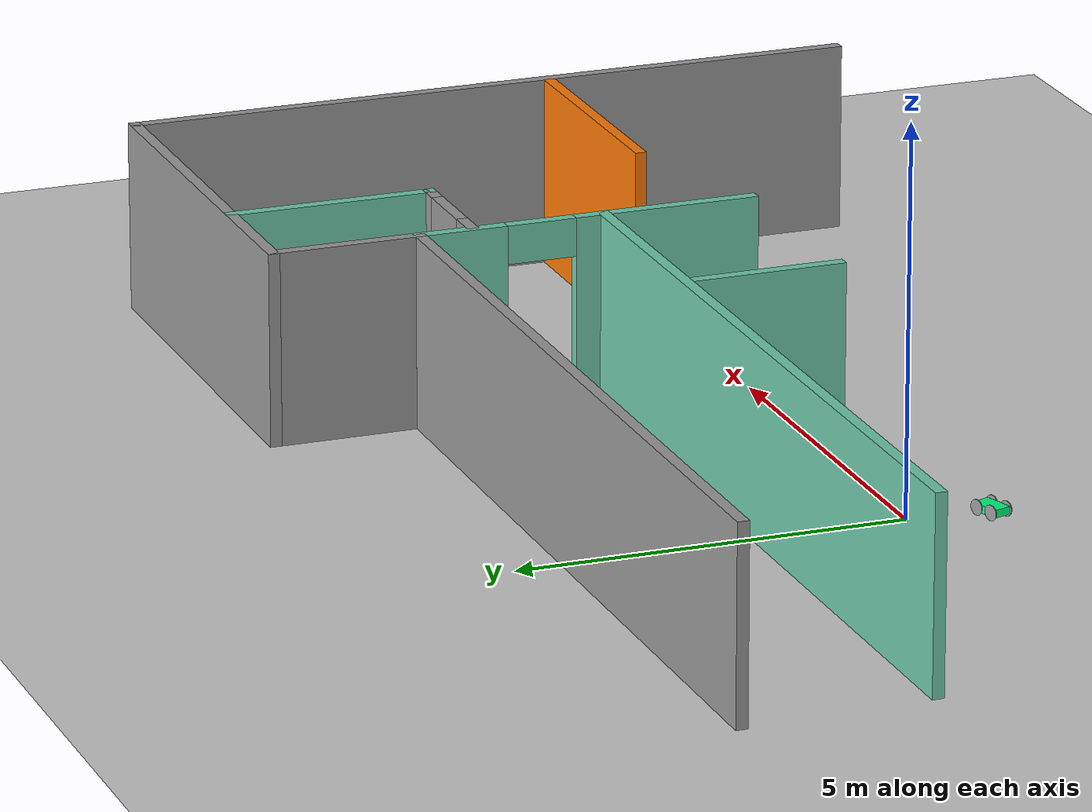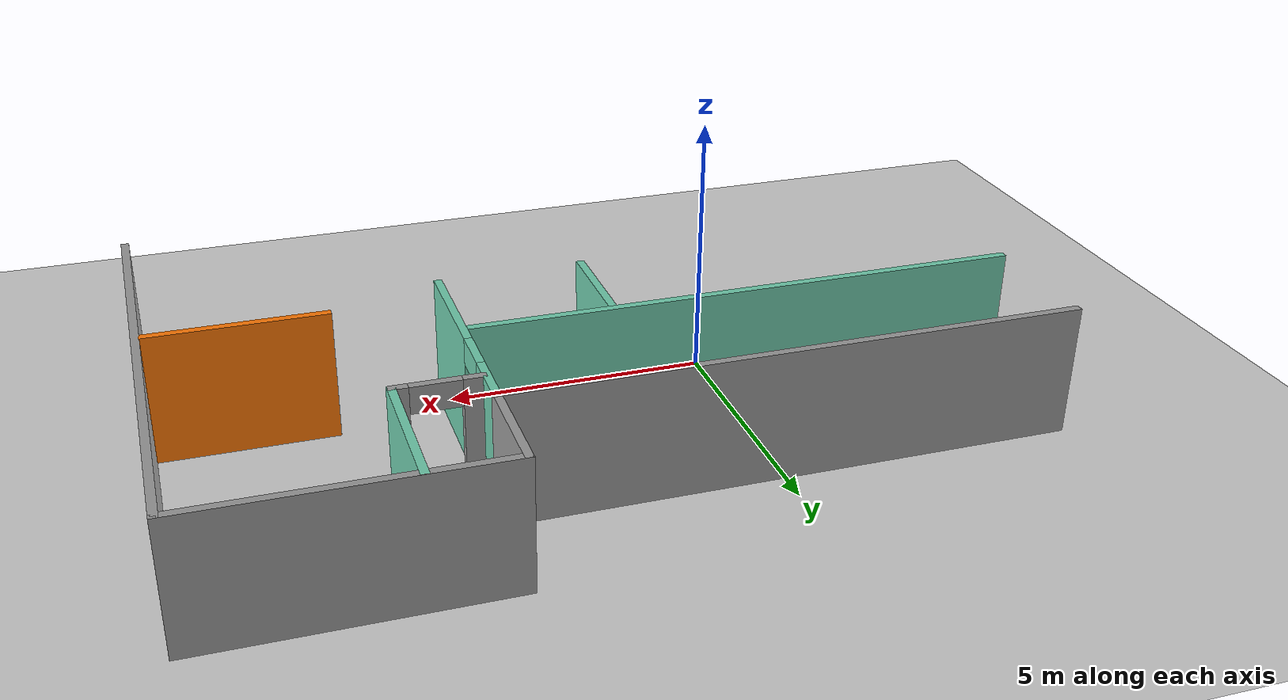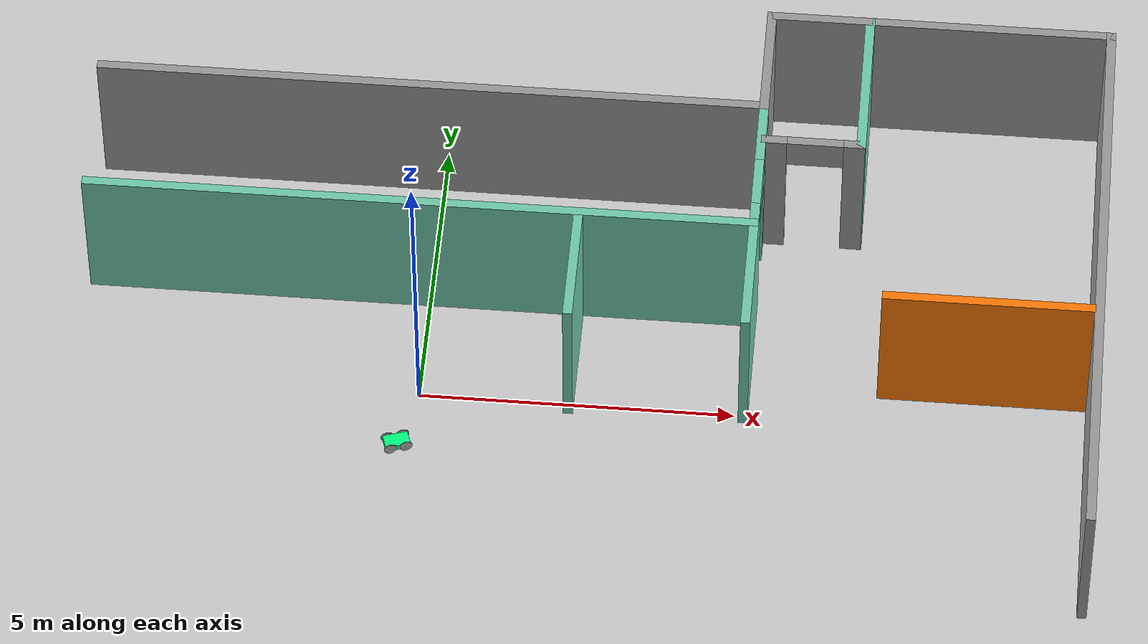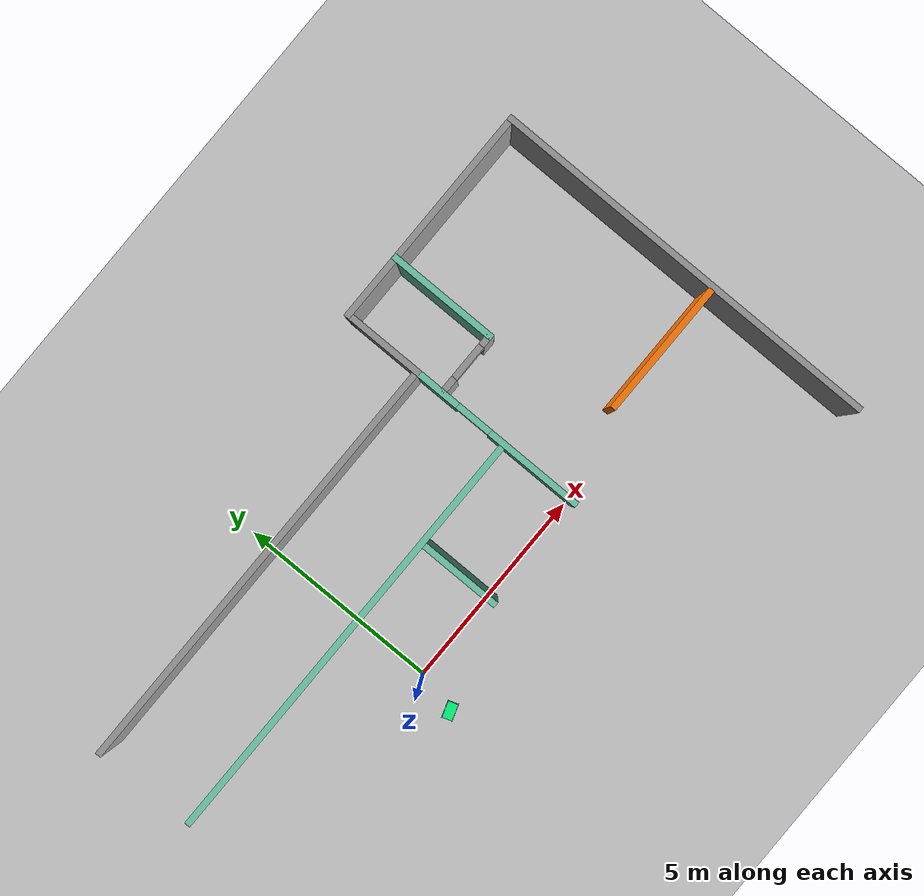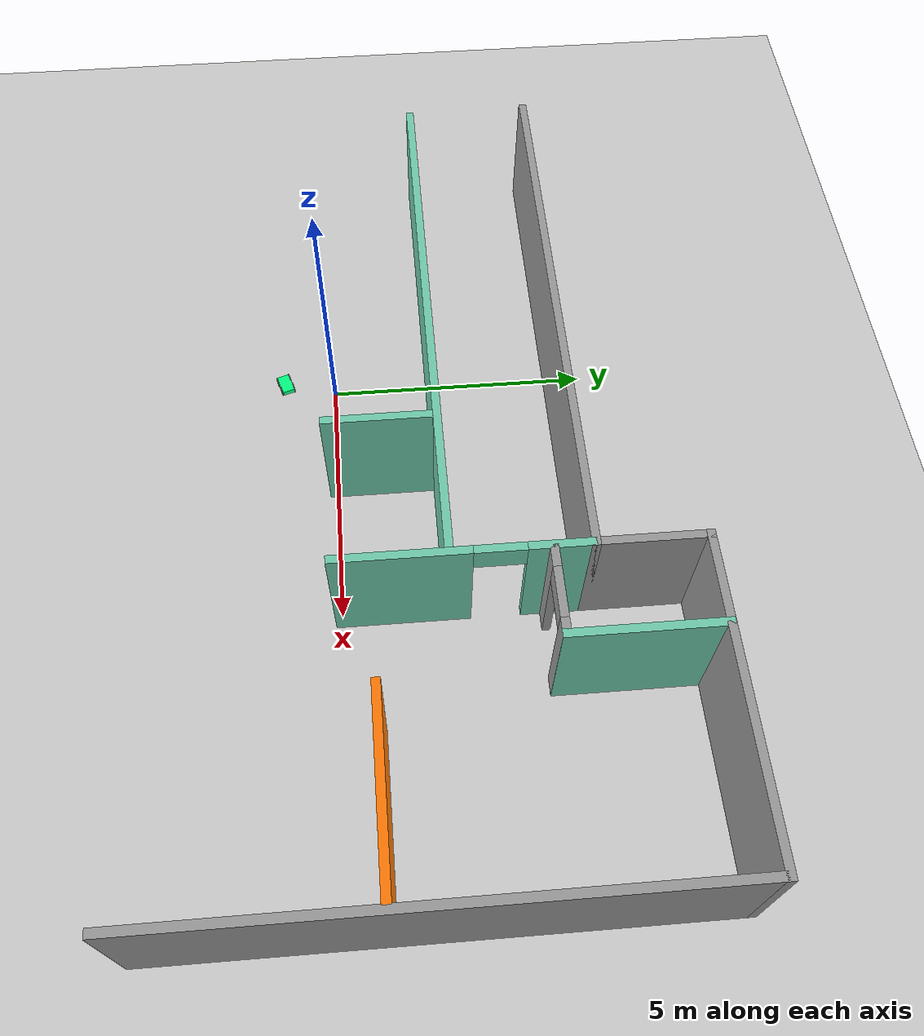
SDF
<sdf version="1.6">
 <world name="default">
  <model name="ground_plane">
   <static>1</static>
   <link name="link">
    <collision name="collision">
     <geometry><plane><normal>0 0 1</normal><size>100 100</size></plane></geometry>
     <surface><friction><ode><mu>100</mu><mu2>50</mu2></ode></friction></surface>
    </collision>
    <visual name="visual">
     <cast_shadows>0</cast_shadows>
     <geometry><plane><normal>0 0 1</normal><size>100 100</size></plane></geometry>
     <material>
      <script><uri>file://media/materials/scripts/gazebo.material</uri><name>Gazebo/Grey</name></script>
     </material>
    </visual>
   </link>
  </model>
  <model name="Building">
   <link name="Wall_114">
    <pose>5.74685 3.602 0 0 -0 0</pose>
    <visual name="Wall_114_Visual_0">
     <pose>-0.620125 0 1.25 0 -0 0</pose>
     <geometry><box><size>0.409749 0.15 2.5</size></box></geometry>
     <material>
      <script><uri>file://media/materials/scripts/gazebo.material</uri><name>Gazebo/Grey</name></script>
      <ambient>1 1 1 1</ambient>
      <shader type="pixel"/>
      <diffuse>0.7 0.7 0.7 1</diffuse>
      <specular>0.01 0.01 0.01 1</specular>
      <emissive>0 0 0 1</emissive>
     </material>
     <meta><layer>0</layer></meta>
    </visual>
    <visual name="Wall_114_Visual_1">
     <pose>0.654875 0 1.25 0 -0 0</pose>
     <geometry><box><size>0.340251 0.15 2.5</size></box></geometry>
     <material>
      <script><uri>file://media/materials/scripts/gazebo.material</uri><name>Gazebo/Grey</name></script>
      <ambient>1 1 1 1</ambient>
      <shader type="pixel"/>
      <diffuse>0.7 0.7 0.7 1</diffuse>
      <specular>0.01 0.01 0.01 1</specular>
      <emissive>0 0 0 1</emissive>
     </material>
     <meta><layer>0</layer></meta>
    </visual>
    <visual name="Wall_114_Visual_2">
     <pose>0.034749 0 2.25 0 -0 0</pose>
     <geometry><box><size>0.9 0.15 0.5</size></box></geometry>
     <material>
      <script><uri>file://media/materials/scripts/gazebo.material</uri><name>Gazebo/Grey</name></script>
      <ambient>1 1 1 1</ambient>
      <shader type="pixel"/>
      <diffuse>0.7 0.7 0.7 1</diffuse>
      <specular>0.01 0.01 0.01 1</specular>
      <emissive>0 0 0 1</emissive>
     </material>
     <meta><layer>0</layer></meta>
    </visual>
    <collision name="Wall_114_Collision_0">
     <pose>-0.620125 0 1.25 0 -0 0</pose>
     <geometry><box><size>0.409749 0.15 2.5</size></box></geometry>
     <surface>
      <friction>
       <ode><mu>1</mu><mu2>1</mu2><fdir1>0 0 0</fdir1><slip1>0</slip1><slip2>0</slip2></ode>
       <torsional>
        <coefficient>1</coefficient>
        <patch_radius>0</patch_radius>
        <surface_radius>0</surface_radius>
        <use_patch_radius>1</use_patch_radius>
        <ode><slip>0</slip></ode>
       </torsional>
      </friction>
      <bounce><restitution_coefficient>0</restitution_coefficient><threshold>1e+06</threshold></bounce>
      <contact>
       <collide_without_contact>0</collide_without_contact>
       <collide_without_contact_bitmask>1</collide_without_contact_bitmask>
       <collide_bitmask>1</collide_bitmask>
       <ode>
        <soft_cfm>0</soft_cfm>
        <soft_erp>0.2</soft_erp>
        <kp>1e+13</kp>
        <kd>1</kd>
        <max_vel>0.01</max_vel>
        <min_depth>0</min_depth>
       </ode>
       <bullet>
        <split_impulse>1</split_impulse>
        <split_impulse_penetration_threshold>-0.01</split_impulse_penetration_threshold>
        <soft_cfm>0</soft_cfm>
        <soft_erp>0.2</soft_erp>
        <kp>1e+13</kp>
        <kd>1</kd>
       </bullet>
      </contact>
     </surface>
    </collision>
    <collision name="Wall_114_Collision_1">
     <pose>0.654875 0 1.25 0 -0 0</pose>
     <geometry><box><size>0.340251 0.15 2.5</size></box></geometry>
     <surface>
      <friction>
       <ode><mu>1</mu><mu2>1</mu2><fdir1>0 0 0</fdir1><slip1>0</slip1><slip2>0</slip2></ode>
       <torsional>
        <coefficient>1</coefficient>
        <patch_radius>0</patch_radius>
        <surface_radius>0</surface_radius>
        <use_patch_radius>1</use_patch_radius>
        <ode><slip>0</slip></ode>
       </torsional>
      </friction>
      <bounce><restitution_coefficient>0</restitution_coefficient><threshold>1e+06</threshold></bounce>
      <contact>
       <collide_without_contact>0</collide_without_contact>
       <collide_without_contact_bitmask>1</collide_without_contact_bitmask>
       <collide_bitmask>1</collide_bitmask>
       <ode>
        <soft_cfm>0</soft_cfm>
        <soft_erp>0.2</soft_erp>
        <kp>1e+13</kp>
        <kd>1</kd>
        <max_vel>0.01</max_vel>
        <min_depth>0</min_depth>
       </ode>
       <bullet>
        <split_impulse>1</split_impulse>
        <split_impulse_penetration_threshold>-0.01</split_impulse_penetration_threshold>
        <soft_cfm>0</soft_cfm>
        <soft_erp>0.2</soft_erp>
        <kp>1e+13</kp>
        <kd>1</kd>
       </bullet>
      </contact>
     </surface>
    </collision>
    <collision name="Wall_114_Collision_2">
     <pose>0.034749 0 2.25 0 -0 0</pose>
     <geometry><box><size>0.9 0.15 0.5</size></box></geometry>
     <surface>
      <friction>
       <ode><mu>1</mu><mu2>1</mu2><fdir1>0 0 0</fdir1><slip1>0</slip1><slip2>0</slip2></ode>
       <torsional>
        <coefficient>1</coefficient>
        <patch_radius>0</patch_radius>
        <surface_radius>0</surface_radius>
        <use_patch_radius>1</use_patch_radius>
        <ode><slip>0</slip></ode>
       </torsional>
      </friction>
      <bounce><restitution_coefficient>0</restitution_coefficient><threshold>1e+06</threshold></bounce>
      <contact>
       <collide_without_contact>0</collide_without_contact>
       <collide_without_contact_bitmask>1</collide_without_contact_bitmask>
       <collide_bitmask>1</collide_bitmask>
       <ode>
        <soft_cfm>0</soft_cfm>
        <soft_erp>0.2</soft_erp>
        <kp>1e+13</kp>
        <kd>1</kd>
        <max_vel>0.01</max_vel>
        <min_depth>0</min_depth>
       </ode>
       <bullet>
        <split_impulse>1</split_impulse>
        <split_impulse_penetration_threshold>-0.01</split_impulse_penetration_threshold>
        <soft_cfm>0</soft_cfm>
        <soft_erp>0.2</soft_erp>
        <kp>1e+13</kp>
        <kd>1</kd>
       </bullet>
      </contact>
     </surface>
    </collision>
   </link>
   <link name="Wall_116">
    <pose>6.50779 4.9025 0 0 -0 1.5708</pose>
    <visual name="Wall_116_Visual">
     <pose>0 0 1.25 0 -0 0</pose>
     <geometry><box><size>2.75 0.15 2.5</size></box></geometry>
     <material>
      <script><uri>file://media/materials/scripts/gazebo.material</uri><name>Gazebo/Grey</name></script>
      <ambient>0.435294 0.796078 0.67451 1</ambient>
      <shader type="pixel"/>
      <diffuse>0.7 0.7 0.7 1</diffuse>
      <specular>0.01 0.01 0.01 1</specular>
      <emissive>0 0 0 1</emissive>
     </material>
     <meta><layer>0</layer></meta>
    </visual>
    <collision name="Wall_116_Collision">
     <pose>0 0 1.25 0 -0 0</pose>
     <geometry><box><size>2.75 0.15 2.5</size></box></geometry>
     <surface>
      <friction>
       <ode><mu>1</mu><mu2>1</mu2><fdir1>0 0 0</fdir1><slip1>0</slip1><slip2>0</slip2></ode>
       <torsional>
        <coefficient>1</coefficient>
        <patch_radius>0</patch_radius>
        <surface_radius>0</surface_radius>
        <use_patch_radius>1</use_patch_radius>
        <ode><slip>0</slip></ode>
       </torsional>
      </friction>
      <bounce><restitution_coefficient>0</restitution_coefficient><threshold>1e+06</threshold></bounce>
      <contact>
       <collide_without_contact>0</collide_without_contact>
       <collide_without_contact_bitmask>1</collide_without_contact_bitmask>
       <collide_bitmask>1</collide_bitmask>
       <ode>
        <soft_cfm>0</soft_cfm>
        <soft_erp>0.2</soft_erp>
        <kp>1e+13</kp>
        <kd>1</kd>
        <max_vel>0.01</max_vel>
        <min_depth>0</min_depth>
       </ode>
       <bullet>
        <split_impulse>1</split_impulse>
        <split_impulse_penetration_threshold>-0.01</split_impulse_penetration_threshold>
        <soft_cfm>0</soft_cfm>
        <soft_erp>0.2</soft_erp>
        <kp>1e+13</kp>
        <kd>1</kd>
       </bullet>
      </contact>
     </surface>
    </collision>
   </link>
   <link name="Wall_123">
    <pose>8.65985 0.580004 0 0 -0 0</pose>
    <visual name="Wall_123_Visual">
     <pose>0 0 1.25 0 -0 0</pose>
     <geometry><box><size>3.314 0.15 2.5</size></box></geometry>
     <material>
      <script><uri>file://media/materials/scripts/gazebo.material</uri><name>Gazebo/Grey</name></script>
      <ambient>0.996078 0.47451 0.0196078 1</ambient>
      <shader type="pixel"/>
      <diffuse>0.7 0.7 0.7 1</diffuse>
      <specular>0.01 0.01 0.01 1</specular>
      <emissive>0 0 0 1</emissive>
     </material>
     <meta><layer>0</layer></meta>
    </visual>
    <collision name="Wall_123_Collision">
     <pose>0 0 1.25 0 -0 0</pose>
     <geometry><box><size>3.314 0.15 2.5</size></box></geometry>
     <surface>
      <friction>
       <ode><mu>1</mu><mu2>1</mu2><fdir1>0 0 0</fdir1><slip1>0</slip1><slip2>0</slip2></ode>
       <torsional>
        <coefficient>1</coefficient>
        <patch_radius>0</patch_radius>
        <surface_radius>0</surface_radius>
        <use_patch_radius>1</use_patch_radius>
        <ode><slip>0</slip></ode>
       </torsional>
      </friction>
      <bounce><restitution_coefficient>0</restitution_coefficient><threshold>1e+06</threshold></bounce>
      <contact>
       <collide_without_contact>0</collide_without_contact>
       <collide_without_contact_bitmask>1</collide_without_contact_bitmask>
       <collide_bitmask>1</collide_bitmask>
       <ode>
        <soft_cfm>0</soft_cfm>
        <soft_erp>0.2</soft_erp>
        <kp>1e+13</kp>
        <kd>1</kd>
        <max_vel>0.01</max_vel>
        <min_depth>0</min_depth>
       </ode>
       <bullet>
        <split_impulse>1</split_impulse>
        <split_impulse_penetration_threshold>-0.01</split_impulse_penetration_threshold>
        <soft_cfm>0</soft_cfm>
        <soft_erp>0.2</soft_erp>
        <kp>1e+13</kp>
        <kd>1</kd>
       </bullet>
      </contact>
     </surface>
    </collision>
   </link>
   <link name="Wall_14">
    <pose>10.375 1.37771 0 0 -0 1.57083</pose>
    <visual name="Wall_14_Visual">
     <pose>0 0 1.25 0 -0 0</pose>
     <geometry><box><size>9.81812 0.15 2.5</size></box></geometry>
     <material>
      <script><uri>file://media/materials/scripts/gazebo.material</uri><name>Gazebo/Grey</name></script>
      <ambient>1 1 1 1</ambient>
      <shader type="pixel"/>
      <diffuse>0.7 0.7 0.7 1</diffuse>
      <specular>0.01 0.01 0.01 1</specular>
      <emissive>0 0 0 1</emissive>
     </material>
     <meta><layer>0</layer></meta>
    </visual>
    <collision name="Wall_14_Collision">
     <pose>0 0 1.25 0 -0 0</pose>
     <geometry><box><size>9.81812 0.15 2.5</size></box></geometry>
     <surface>
      <friction>
       <ode><mu>1</mu><mu2>1</mu2><fdir1>0 0 0</fdir1><slip1>0</slip1><slip2>0</slip2></ode>
       <torsional>
        <coefficient>1</coefficient>
        <patch_radius>0</patch_radius>
        <surface_radius>0</surface_radius>
        <use_patch_radius>1</use_patch_radius>
        <ode><slip>0</slip></ode>
       </torsional>
      </friction>
      <bounce><restitution_coefficient>0</restitution_coefficient><threshold>1e+06</threshold></bounce>
      <contact>
       <collide_without_contact>0</collide_without_contact>
       <collide_without_contact_bitmask>1</collide_without_contact_bitmask>
       <collide_bitmask>1</collide_bitmask>
       <ode>
        <soft_cfm>0</soft_cfm>
        <soft_erp>0.2</soft_erp>
        <kp>1e+13</kp>
        <kd>1</kd>
        <max_vel>0.01</max_vel>
        <min_depth>0</min_depth>
       </ode>
       <bullet>
        <split_impulse>1</split_impulse>
        <split_impulse_penetration_threshold>-0.01</split_impulse_penetration_threshold>
        <soft_cfm>0</soft_cfm>
        <soft_erp>0.2</soft_erp>
        <kp>1e+13</kp>
        <kd>1</kd>
       </bullet>
      </contact>
     </surface>
    </collision>
   </link>
   <link name="Wall_15">
    <pose>7.64985 6.212 0 0 -0 3.14159</pose>
    <visual name="Wall_15_Visual">
     <pose>0 0 1.25 0 -0 0</pose>
     <geometry><box><size>5.6005 0.15 2.5</size></box></geometry>
     <material>
      <script><uri>file://media/materials/scripts/gazebo.material</uri><name>Gazebo/Grey</name></script>
      <ambient>1 1 1 1</ambient>
      <shader type="pixel"/>
      <diffuse>0.7 0.7 0.7 1</diffuse>
      <specular>0.01 0.01 0.01 1</specular>
      <emissive>0 0 0 1</emissive>
     </material>
     <meta><layer>0</layer></meta>
    </visual>
    <collision name="Wall_15_Collision">
     <pose>0 0 1.25 0 -0 0</pose>
     <geometry><box><size>5.6005 0.15 2.5</size></box></geometry>
     <surface>
      <friction>
       <ode><mu>1</mu><mu2>1</mu2><fdir1>0 0 0</fdir1><slip1>0</slip1><slip2>0</slip2></ode>
       <torsional>
        <coefficient>1</coefficient>
        <patch_radius>0</patch_radius>
        <surface_radius>0</surface_radius>
        <use_patch_radius>1</use_patch_radius>
        <ode><slip>0</slip></ode>
       </torsional>
      </friction>
      <bounce><restitution_coefficient>0</restitution_coefficient><threshold>1e+06</threshold></bounce>
      <contact>
       <collide_without_contact>0</collide_without_contact>
       <collide_without_contact_bitmask>1</collide_without_contact_bitmask>
       <collide_bitmask>1</collide_bitmask>
       <ode>
        <soft_cfm>0</soft_cfm>
        <soft_erp>0.2</soft_erp>
        <kp>1e+13</kp>
        <kd>1</kd>
        <max_vel>0.01</max_vel>
        <min_depth>0</min_depth>
       </ode>
       <bullet>
        <split_impulse>1</split_impulse>
        <split_impulse_penetration_threshold>-0.01</split_impulse_penetration_threshold>
        <soft_cfm>0</soft_cfm>
        <soft_erp>0.2</soft_erp>
        <kp>1e+13</kp>
        <kd>1</kd>
       </bullet>
      </contact>
     </surface>
    </collision>
   </link>
   <link name="Wall_16">
    <pose>4.92485 5.2565 0 0 0 -1.5708</pose>
    <visual name="Wall_16_Visual">
     <pose>0 0 1.25 0 -0 0</pose>
     <geometry><box><size>2.06053 0.15 2.5</size></box></geometry>
     <material>
      <script><uri>file://media/materials/scripts/gazebo.material</uri><name>Gazebo/Grey</name></script>
      <ambient>1 1 1 1</ambient>
      <shader type="pixel"/>
      <diffuse>0.7 0.7 0.7 1</diffuse>
      <specular>0.01 0.01 0.01 1</specular>
      <emissive>0 0 0 1</emissive>
     </material>
     <meta><layer>0</layer></meta>
    </visual>
    <collision name="Wall_16_Collision">
     <pose>0 0 1.25 0 -0 0</pose>
     <geometry><box><size>2.06053 0.15 2.5</size></box></geometry>
     <surface>
      <friction>
       <ode><mu>1</mu><mu2>1</mu2><fdir1>0 0 0</fdir1><slip1>0</slip1><slip2>0</slip2></ode>
       <torsional>
        <coefficient>1</coefficient>
        <patch_radius>0</patch_radius>
        <surface_radius>0</surface_radius>
        <use_patch_radius>1</use_patch_radius>
        <ode><slip>0</slip></ode>
       </torsional>
      </friction>
      <bounce><restitution_coefficient>0</restitution_coefficient><threshold>1e+06</threshold></bounce>
      <contact>
       <collide_without_contact>0</collide_without_contact>
       <collide_without_contact_bitmask>1</collide_without_contact_bitmask>
       <collide_bitmask>1</collide_bitmask>
       <ode>
        <soft_cfm>0</soft_cfm>
        <soft_erp>0.2</soft_erp>
        <kp>1e+13</kp>
        <kd>1</kd>
        <max_vel>0.01</max_vel>
        <min_depth>0</min_depth>
       </ode>
       <bullet>
        <split_impulse>1</split_impulse>
        <split_impulse_penetration_threshold>-0.01</split_impulse_penetration_threshold>
        <soft_cfm>0</soft_cfm>
        <soft_erp>0.2</soft_erp>
        <kp>1e+13</kp>
        <kd>1</kd>
       </bullet>
      </contact>
     </surface>
    </collision>
   </link>
   <link name="Wall_17">
    <pose>-0.375154 4.301 0 0 -0 3.14159</pose>
    <visual name="Wall_17_Visual">
     <pose>0 0 1.25 0 -0 0</pose>
     <geometry><box><size>10.75 0.15 2.5</size></box></geometry>
     <material>
      <script><uri>file://media/materials/scripts/gazebo.material</uri><name>Gazebo/Grey</name></script>
      <ambient>1 1 1 1</ambient>
      <shader type="pixel"/>
      <diffuse>0.7 0.7 0.7 1</diffuse>
      <specular>0.01 0.01 0.01 1</specular>
      <emissive>0 0 0 1</emissive>
     </material>
     <meta><layer>0</layer></meta>
    </visual>
    <collision name="Wall_17_Collision">
     <pose>0 0 1.25 0 -0 0</pose>
     <geometry><box><size>10.75 0.15 2.5</size></box></geometry>
     <surface>
      <friction>
       <ode><mu>1</mu><mu2>1</mu2><fdir1>0 0 0</fdir1><slip1>0</slip1><slip2>0</slip2></ode>
       <torsional>
        <coefficient>1</coefficient>
        <patch_radius>0</patch_radius>
        <surface_radius>0</surface_radius>
        <use_patch_radius>1</use_patch_radius>
        <ode><slip>0</slip></ode>
       </torsional>
      </friction>
      <bounce><restitution_coefficient>0</restitution_coefficient><threshold>1e+06</threshold></bounce>
      <contact>
       <collide_without_contact>0</collide_without_contact>
       <collide_without_contact_bitmask>1</collide_without_contact_bitmask>
       <collide_bitmask>1</collide_bitmask>
       <ode>
        <soft_cfm>0</soft_cfm>
        <soft_erp>0.2</soft_erp>
        <kp>1e+13</kp>
        <kd>1</kd>
        <max_vel>0.01</max_vel>
        <min_depth>0</min_depth>
       </ode>
       <bullet>
        <split_impulse>1</split_impulse>
        <split_impulse_penetration_threshold>-0.01</split_impulse_penetration_threshold>
        <soft_cfm>0</soft_cfm>
        <soft_erp>0.2</soft_erp>
        <kp>1e+13</kp>
        <kd>1</kd>
       </bullet>
      </contact>
     </surface>
    </collision>
   </link>
   <link name="Wall_42">
    <pose>4.92481 2.11064 0 0 0 -1.57081</pose>
    <visual name="Wall_42_Visual_0">
     <pose>-1.66328 0 1.25 0 -0 0</pose>
     <geometry><box><size>1.20417 0.15 2.5</size></box></geometry>
     <material>
      <script><uri>file://media/materials/scripts/gazebo.material</uri><name>Gazebo/Grey</name></script>
      <ambient>0.435294 0.796078 0.67451 1</ambient>
      <shader type="pixel"/>
      <diffuse>0.7 0.7 0.7 1</diffuse>
      <specular>0.01 0.01 0.01 1</specular>
      <emissive>0 0 0 1</emissive>
     </material>
     <meta><layer>0</layer></meta>
    </visual>
    <visual name="Wall_42_Visual_1">
     <pose>1.05208 0 1.25 0 -0 0</pose>
     <geometry><box><size>2.42655 0.15 2.5</size></box></geometry>
     <material>
      <script><uri>file://media/materials/scripts/gazebo.material</uri><name>Gazebo/Grey</name></script>
      <ambient>0.435294 0.796078 0.67451 1</ambient>
      <shader type="pixel"/>
      <diffuse>0.7 0.7 0.7 1</diffuse>
      <specular>0.01 0.01 0.01 1</specular>
      <emissive>0 0 0 1</emissive>
     </material>
     <meta><layer>0</layer></meta>
    </visual>
    <visual name="Wall_42_Visual_2">
     <pose>-0.611192 0 2.25 0 -0 0</pose>
     <geometry><box><size>0.9 0.15 0.5</size></box></geometry>
     <material>
      <script><uri>file://media/materials/scripts/gazebo.material</uri><name>Gazebo/Grey</name></script>
      <ambient>0.435294 0.796078 0.67451 1</ambient>
      <shader type="pixel"/>
      <diffuse>0.7 0.7 0.7 1</diffuse>
      <specular>0.01 0.01 0.01 1</specular>
      <emissive>0 0 0 1</emissive>
     </material>
     <meta><layer>0</layer></meta>
    </visual>
    <collision name="Wall_42_Collision_0">
     <pose>-1.66328 0 1.25 0 -0 0</pose>
     <geometry><box><size>1.20417 0.15 2.5</size></box></geometry>
     <surface>
      <friction>
       <ode><mu>1</mu><mu2>1</mu2><fdir1>0 0 0</fdir1><slip1>0</slip1><slip2>0</slip2></ode>
       <torsional>
        <coefficient>1</coefficient>
        <patch_radius>0</patch_radius>
        <surface_radius>0</surface_radius>
        <use_patch_radius>1</use_patch_radius>
        <ode><slip>0</slip></ode>
       </torsional>
      </friction>
      <bounce><restitution_coefficient>0</restitution_coefficient><threshold>1e+06</threshold></bounce>
      <contact>
       <collide_without_contact>0</collide_without_contact>
       <collide_without_contact_bitmask>1</collide_without_contact_bitmask>
       <collide_bitmask>1</collide_bitmask>
       <ode>
        <soft_cfm>0</soft_cfm>
        <soft_erp>0.2</soft_erp>
        <kp>1e+13</kp>
        <kd>1</kd>
        <max_vel>0.01</max_vel>
        <min_depth>0</min_depth>
       </ode>
       <bullet>
        <split_impulse>1</split_impulse>
        <split_impulse_penetration_threshold>-0.01</split_impulse_penetration_threshold>
        <soft_cfm>0</soft_cfm>
        <soft_erp>0.2</soft_erp>
        <kp>1e+13</kp>
        <kd>1</kd>
       </bullet>
      </contact>
     </surface>
    </collision>
    <collision name="Wall_42_Collision_1">
     <pose>1.05208 0 1.25 0 -0 0</pose>
     <geometry><box><size>2.42655 0.15 2.5</size></box></geometry>
     <surface>
      <friction>
       <ode><mu>1</mu><mu2>1</mu2><fdir1>0 0 0</fdir1><slip1>0</slip1><slip2>0</slip2></ode>
       <torsional>
        <coefficient>1</coefficient>
        <patch_radius>0</patch_radius>
        <surface_radius>0</surface_radius>
        <use_patch_radius>1</use_patch_radius>
        <ode><slip>0</slip></ode>
       </torsional>
      </friction>
      <bounce><restitution_coefficient>0</restitution_coefficient><threshold>1e+06</threshold></bounce>
      <contact>
       <collide_without_contact>0</collide_without_contact>
       <collide_without_contact_bitmask>1</collide_without_contact_bitmask>
       <collide_bitmask>1</collide_bitmask>
       <ode>
        <soft_cfm>0</soft_cfm>
        <soft_erp>0.2</soft_erp>
        <kp>1e+13</kp>
        <kd>1</kd>
        <max_vel>0.01</max_vel>
        <min_depth>0</min_depth>
       </ode>
       <bullet>
        <split_impulse>1</split_impulse>
        <split_impulse_penetration_threshold>-0.01</split_impulse_penetration_threshold>
        <soft_cfm>0</soft_cfm>
        <soft_erp>0.2</soft_erp>
        <kp>1e+13</kp>
        <kd>1</kd>
       </bullet>
      </contact>
     </surface>
    </collision>
    <collision name="Wall_42_Collision_2">
     <pose>-0.611192 0 2.25 0 -0 0</pose>
     <geometry><box><size>0.9 0.15 0.5</size></box></geometry>
     <surface>
      <friction>
       <ode><mu>1</mu><mu2>1</mu2><fdir1>0 0 0</fdir1><slip1>0</slip1><slip2>0</slip2></ode>
       <torsional>
        <coefficient>1</coefficient>
        <patch_radius>0</patch_radius>
        <surface_radius>0</surface_radius>
        <use_patch_radius>1</use_patch_radius>
        <ode><slip>0</slip></ode>
       </torsional>
      </friction>
      <bounce><restitution_coefficient>0</restitution_coefficient><threshold>1e+06</threshold></bounce>
      <contact>
       <collide_without_contact>0</collide_without_contact>
       <collide_without_contact_bitmask>1</collide_without_contact_bitmask>
       <collide_bitmask>1</collide_bitmask>
       <ode>
        <soft_cfm>0</soft_cfm>
        <soft_erp>0.2</soft_erp>
        <kp>1e+13</kp>
        <kd>1</kd>
        <max_vel>0.01</max_vel>
        <min_depth>0</min_depth>
       </ode>
       <bullet>
        <split_impulse>1</split_impulse>
        <split_impulse_penetration_threshold>-0.01</split_impulse_penetration_threshold>
        <soft_cfm>0</soft_cfm>
        <soft_erp>0.2</soft_erp>
        <kp>1e+13</kp>
        <kd>1</kd>
       </bullet>
      </contact>
     </surface>
    </collision>
   </link>
   <link name="Wall_44">
    <pose>-0.339154 1.876 0 0 -0 0</pose>
    <visual name="Wall_44_Visual">
     <pose>0 0 1.25 0 -0 0</pose>
     <geometry><box><size>10.67 0.15 2.5</size></box></geometry>
     <material>
      <script><uri>file://media/materials/scripts/gazebo.material</uri><name>Gazebo/Grey</name></script>
      <ambient>0.435294 0.796078 0.67451 1</ambient>
      <shader type="pixel"/>
      <diffuse>0.7 0.7 0.7 1</diffuse>
      <specular>0.01 0.01 0.01 1</specular>
      <emissive>0 0 0 1</emissive>
     </material>
     <meta><layer>0</layer></meta>
    </visual>
    <collision name="Wall_44_Collision">
     <pose>0 0 1.25 0 -0 0</pose>
     <geometry><box><size>10.67 0.15 2.5</size></box></geometry>
     <surface>
      <friction>
       <ode><mu>1</mu><mu2>1</mu2><fdir1>0 0 0</fdir1><slip1>0</slip1><slip2>0</slip2></ode>
       <torsional>
        <coefficient>1</coefficient>
        <patch_radius>0</patch_radius>
        <surface_radius>0</surface_radius>
        <use_patch_radius>1</use_patch_radius>
        <ode><slip>0</slip></ode>
       </torsional>
      </friction>
      <bounce><restitution_coefficient>0</restitution_coefficient><threshold>1e+06</threshold></bounce>
      <contact>
       <collide_without_contact>0</collide_without_contact>
       <collide_without_contact_bitmask>1</collide_without_contact_bitmask>
       <collide_bitmask>1</collide_bitmask>
       <ode>
        <soft_cfm>0</soft_cfm>
        <soft_erp>0.2</soft_erp>
        <kp>1e+13</kp>
        <kd>1</kd>
        <max_vel>0.01</max_vel>
        <min_depth>0</min_depth>
       </ode>
       <bullet>
        <split_impulse>1</split_impulse>
        <split_impulse_penetration_threshold>-0.01</split_impulse_penetration_threshold>
        <soft_cfm>0</soft_cfm>
        <soft_erp>0.2</soft_erp>
        <kp>1e+13</kp>
        <kd>1</kd>
       </bullet>
      </contact>
     </surface>
    </collision>
   </link>
   <link name="Wall_50">
    <pose>2.16791 0.805908 0 0 -0 1.5708</pose>
    <visual name="Wall_50_Visual">
     <pose>0 0 1.25 0 -0 0</pose>
     <geometry><box><size>2 0.15 2.5</size></box></geometry>
     <material>
      <script><uri>file://media/materials/scripts/gazebo.material</uri><name>Gazebo/Grey</name></script>
      <ambient>0.435294 0.796078 0.67451 1</ambient>
      <shader type="pixel"/>
      <diffuse>0.7 0.7 0.7 1</diffuse>
      <specular>0.01 0.01 0.01 1</specular>
      <emissive>0 0 0 1</emissive>
     </material>
     <meta><layer>0</layer></meta>
    </visual>
    <collision name="Wall_50_Collision">
     <pose>0 0 1.25 0 -0 0</pose>
     <geometry><box><size>2 0.15 2.5</size></box></geometry>
     <surface>
      <friction>
       <ode><mu>1</mu><mu2>1</mu2><fdir1>0 0 0</fdir1><slip1>0</slip1><slip2>0</slip2></ode>
       <torsional>
        <coefficient>1</coefficient>
        <patch_radius>0</patch_radius>
        <surface_radius>0</surface_radius>
        <use_patch_radius>1</use_patch_radius>
        <ode><slip>0</slip></ode>
       </torsional>
      </friction>
      <bounce><restitution_coefficient>0</restitution_coefficient><threshold>1e+06</threshold></bounce>
      <contact>
       <collide_without_contact>0</collide_without_contact>
       <collide_without_contact_bitmask>1</collide_without_contact_bitmask>
       <collide_bitmask>1</collide_bitmask>
       <ode>
        <soft_cfm>0</soft_cfm>
        <soft_erp>0.2</soft_erp>
        <kp>1e+13</kp>
        <kd>1</kd>
        <max_vel>0.01</max_vel>
        <min_depth>0</min_depth>
       </ode>
       <bullet>
        <split_impulse>1</split_impulse>
        <split_impulse_penetration_threshold>-0.01</split_impulse_penetration_threshold>
        <soft_cfm>0</soft_cfm>
        <soft_erp>0.2</soft_erp>
        <kp>1e+13</kp>
        <kd>1</kd>
       </bullet>
      </contact>
     </surface>
    </collision>
   </link>
   <static>1</static>
   <pose>0.2098 0.03522 0 0 -0 0</pose>
  </model>
  <model name="Diff_Drive_Robot_clone">
   <link name="link_1">
    <pose>0 0 0.025 0 -0 0</pose>
    <inertial>
     <mass>1</mass>
     <inertia>
      <ixx>0.166667</ixx>
      <ixy>0</ixy>
      <ixz>0</ixz>
      <iyy>0.166667</iyy>
      <iyz>0</iyz>
      <izz>0.166667</izz>
     </inertia>
    </inertial>
    <visual name="visual">
     <geometry><box><size>0.4 0.25 0.1</size></box></geometry>
     <material>
      <lighting>1</lighting>
      <script><uri>file://media/materials/scripts/gazebo.material</uri><name>Gazebo/Grey</name></script>
      <shader type="pixel"><normal_map>__default__</normal_map></shader>
      <ambient>0 1 0.5 1</ambient>
      <diffuse>0.7 0.7 0.7 1</diffuse>
      <specular>0.01 0.01 0.01 1</specular>
      <emissive>0 0 0 1</emissive>
     </material>
    </visual>
    <collision name="collision">
     <geometry><box><size>0.4 0.25 0.1</size></box></geometry>
     <surface>
      <friction>
       <ode><mu>1</mu><mu2>1</mu2><fdir1>0 0 0</fdir1><slip1>0</slip1><slip2>0</slip2></ode>
       <torsional>
        <coefficient>1</coefficient>
        <patch_radius>0</patch_radius>
        <surface_radius>0</surface_radius>
        <use_patch_radius>1</use_patch_radius>
        <ode><slip>0</slip></ode>
       </torsional>
      </friction>
      <bounce><restitution_coefficient>0</restitution_coefficient><threshold>1e+06</threshold></bounce>
      <contact>
       <collide_without_contact>0</collide_without_contact>
       <collide_without_contact_bitmask>1</collide_without_contact_bitmask>
       <collide_bitmask>1</collide_bitmask>
       <ode>
        <soft_cfm>0</soft_cfm>
        <soft_erp>0.2</soft_erp>
        <kp>1e+13</kp>
        <kd>1</kd>
        <max_vel>0.01</max_vel>
        <min_depth>0</min_depth>
       </ode>
       <bullet>
        <split_impulse>1</split_impulse>
        <split_impulse_penetration_threshold>-0.01</split_impulse_penetration_threshold>
        <soft_cfm>0</soft_cfm>
        <soft_erp>0.2</soft_erp>
        <kp>1e+13</kp>
        <kd>1</kd>
       </bullet>
      </contact>
     </surface>
    </collision>
   </link>
   <link name="link_2">
    <pose>0.125 0.125 0.025 1.5707 -0 0</pose>
    <inertial>
     <mass>1</mass>
     <inertia><ixx>0.145833</ixx><ixy>0</ixy><ixz>0</ixz><iyy>0.145833</iyy><iyz>0</iyz><izz>0.125</izz></inertia>
    </inertial>
    <visual name="visual">
     <geometry><cylinder><radius>0.1</radius><length>0.01</length></cylinder></geometry>
     <material>
      <lighting>1</lighting>
      <script><uri>file://media/materials/scripts/gazebo.material</uri><name>Gazebo/Grey</name></script>
      <shader type="pixel"><normal_map>__default__</normal_map></shader>
      <ambient>0.3 0.3 0.3 1</ambient>
      <diffuse>0.7 0.7 0.7 1</diffuse>
      <specular>0.01 0.01 0.01 1</specular>
      <emissive>0 0 0 1</emissive>
     </material>
    </visual>
    <collision name="collision">
     <geometry><cylinder><radius>0.1</radius><length>0.01</length></cylinder></geometry>
     <surface>
      <friction>
       <ode><mu>1</mu><mu2>1</mu2><fdir1>0 0 0</fdir1><slip1>0</slip1><slip2>0</slip2></ode>
       <torsional>
        <coefficient>1</coefficient>
        <patch_radius>0</patch_radius>
        <surface_radius>0</surface_radius>
        <use_patch_radius>1</use_patch_radius>
        <ode><slip>0</slip></ode>
       </torsional>
      </friction>
      <bounce><restitution_coefficient>0</restitution_coefficient><threshold>1e+06</threshold></bounce>
      <contact>
       <collide_without_contact>0</collide_without_contact>
       <collide_without_contact_bitmask>1</collide_without_contact_bitmask>
       <collide_bitmask>1</collide_bitmask>
       <ode>
        <soft_cfm>0</soft_cfm>
        <soft_erp>0.2</soft_erp>
        <kp>1e+13</kp>
        <kd>1</kd>
        <max_vel>0.01</max_vel>
        <min_depth>0</min_depth>
       </ode>
       <bullet>
        <split_impulse>1</split_impulse>
        <split_impulse_penetration_threshold>-0.01</split_impulse_penetration_threshold>
        <soft_cfm>0</soft_cfm>
        <soft_erp>0.2</soft_erp>
        <kp>1e+13</kp>
        <kd>1</kd>
       </bullet>
      </contact>
     </surface>
    </collision>
   </link>
   <link name="link_2_clone">
    <pose>0.125 -0.125 0.025 1.5707 -0 0</pose>
    <inertial>
     <mass>1</mass>
     <inertia><ixx>0.145833</ixx><ixy>0</ixy><ixz>0</ixz><iyy>0.145833</iyy><iyz>0</iyz><izz>0.125</izz></inertia>
    </inertial>
    <visual name="visual">
     <geometry><cylinder><radius>0.1</radius><length>0.01</length></cylinder></geometry>
     <material>
      <lighting>1</lighting>
      <script><uri>file://media/materials/scripts/gazebo.material</uri><name>Gazebo/Grey</name></script>
      <shader type="pixel"><normal_map>__default__</normal_map></shader>
      <ambient>0.3 0.3 0.3 1</ambient>
      <diffuse>0.7 0.7 0.7 1</diffuse>
      <specular>0.01 0.01 0.01 1</specular>
      <emissive>0 0 0 1</emissive>
     </material>
    </visual>
    <collision name="collision">
     <geometry><cylinder><radius>0.1</radius><length>0.01</length></cylinder></geometry>
     <surface>
      <friction>
       <ode><mu>1</mu><mu2>1</mu2><fdir1>0 0 0</fdir1><slip1>0</slip1><slip2>0</slip2></ode>
       <torsional>
        <coefficient>1</coefficient>
        <patch_radius>0</patch_radius>
        <surface_radius>0</surface_radius>
        <use_patch_radius>1</use_patch_radius>
        <ode><slip>0</slip></ode>
       </torsional>
      </friction>
      <bounce><restitution_coefficient>0</restitution_coefficient><threshold>1e+06</threshold></bounce>
      <contact>
       <collide_without_contact>0</collide_without_contact>
       <collide_without_contact_bitmask>1</collide_without_contact_bitmask>
       <collide_bitmask>1</collide_bitmask>
       <ode>
        <soft_cfm>0</soft_cfm>
        <soft_erp>0.2</soft_erp>
        <kp>1e+13</kp>
        <kd>1</kd>
        <max_vel>0.01</max_vel>
        <min_depth>0</min_depth>
       </ode>
       <bullet>
        <split_impulse>1</split_impulse>
        <split_impulse_penetration_threshold>-0.01</split_impulse_penetration_threshold>
        <soft_cfm>0</soft_cfm>
        <soft_erp>0.2</soft_erp>
        <kp>1e+13</kp>
        <kd>1</kd>
       </bullet>
      </contact>
     </surface>
    </collision>
   </link>
   <link name="link_2_clone_0">
    <pose>-0.125 0.125 0.025 1.5707 -0 0</pose>
    <inertial>
     <mass>1</mass>
     <inertia><ixx>0.145833</ixx><ixy>0</ixy><ixz>0</ixz><iyy>0.145833</iyy><iyz>0</iyz><izz>0.125</izz></inertia>
    </inertial>
    <visual name="visual">
     <geometry><cylinder><radius>0.1</radius><length>0.01</length></cylinder></geometry>
     <material>
      <lighting>1</lighting>
      <script><uri>file://media/materials/scripts/gazebo.material</uri><name>Gazebo/Grey</name></script>
      <shader type="pixel"><normal_map>__default__</normal_map></shader>
      <ambient>0.3 0.3 0.3 1</ambient>
      <diffuse>0.7 0.7 0.7 1</diffuse>
      <specular>0.01 0.01 0.01 1</specular>
      <emissive>0 0 0 1</emissive>
     </material>
    </visual>
    <collision name="collision">
     <geometry><cylinder><radius>0.1</radius><length>0.01</length></cylinder></geometry>
     <surface>
      <friction>
       <ode><mu>1</mu><mu2>1</mu2><fdir1>0 0 0</fdir1><slip1>0</slip1><slip2>0</slip2></ode>
       <torsional>
        <coefficient>1</coefficient>
        <patch_radius>0</patch_radius>
        <surface_radius>0</surface_radius>
        <use_patch_radius>1</use_patch_radius>
        <ode><slip>0</slip></ode>
       </torsional>
      </friction>
      <bounce><restitution_coefficient>0</restitution_coefficient><threshold>1e+06</threshold></bounce>
      <contact>
       <collide_without_contact>0</collide_without_contact>
       <collide_without_contact_bitmask>1</collide_without_contact_bitmask>
       <collide_bitmask>1</collide_bitmask>
       <ode>
        <soft_cfm>0</soft_cfm>
        <soft_erp>0.2</soft_erp>
        <kp>1e+13</kp>
        <kd>1</kd>
        <max_vel>0.01</max_vel>
        <min_depth>0</min_depth>
       </ode>
       <bullet>
        <split_impulse>1</split_impulse>
        <split_impulse_penetration_threshold>-0.01</split_impulse_penetration_threshold>
        <soft_cfm>0</soft_cfm>
        <soft_erp>0.2</soft_erp>
        <kp>1e+13</kp>
        <kd>1</kd>
       </bullet>
      </contact>
     </surface>
    </collision>
   </link>
   <link name="link_2_clone_1">
    <pose>-0.125 -0.125 0.025 1.5707 -0 0</pose>
    <inertial>
     <mass>1</mass>
     <inertia><ixx>0.145833</ixx><ixy>0</ixy><ixz>0</ixz><iyy>0.145833</iyy><iyz>0</iyz><izz>0.125</izz></inertia>
    </inertial>
    <visual name="visual">
     <geometry><cylinder><radius>0.1</radius><length>0.01</length></cylinder></geometry>
     <material>
      <lighting>1</lighting>
      <script><uri>file://media/materials/scripts/gazebo.material</uri><name>Gazebo/Grey</name></script>
      <shader type="pixel"><normal_map>__default__</normal_map></shader>
      <ambient>0.3 0.3 0.3 1</ambient>
      <diffuse>0.7 0.7 0.7 1</diffuse>
      <specular>0.01 0.01 0.01 1</specular>
      <emissive>0 0 0 1</emissive>
     </material>
    </visual>
    <collision name="collision">
     <geometry><cylinder><radius>0.1</radius><length>0.01</length></cylinder></geometry>
     <surface>
      <friction>
       <ode><mu>1</mu><mu2>1</mu2><fdir1>0 0 0</fdir1><slip1>0</slip1><slip2>0</slip2></ode>
       <torsional>
        <coefficient>1</coefficient>
        <patch_radius>0</patch_radius>
        <surface_radius>0</surface_radius>
        <use_patch_radius>1</use_patch_radius>
        <ode><slip>0</slip></ode>
       </torsional>
      </friction>
      <bounce><restitution_coefficient>0</restitution_coefficient><threshold>1e+06</threshold></bounce>
      <contact>
       <collide_without_contact>0</collide_without_contact>
       <collide_without_contact_bitmask>1</collide_without_contact_bitmask>
       <collide_bitmask>1</collide_bitmask>
       <ode>
        <soft_cfm>0</soft_cfm>
        <soft_erp>0.2</soft_erp>
        <kp>1e+13</kp>
        <kd>1</kd>
        <max_vel>0.01</max_vel>
        <min_depth>0</min_depth>
       </ode>
       <bullet>
        <split_impulse>1</split_impulse>
        <split_impulse_penetration_threshold>-0.01</split_impulse_penetration_threshold>
        <soft_cfm>0</soft_cfm>
        <soft_erp>0.2</soft_erp>
        <kp>1e+13</kp>
        <kd>1</kd>
       </bullet>
      </contact>
     </surface>
    </collision>
   </link>
   <joint name="link_1_JOINT_1" type="revolute">
    <parent>link_1</parent>
    <child>link_2</child>
    <axis>
     <xyz>0 0 1</xyz>
     <use_parent_model_frame>0</use_parent_model_frame>
     <limit>
      <lower>-1.79769e+308</lower>
      <upper>1.79769e+308</upper>
      <effort>-1</effort>
      <velocity>-1</velocity>
     </limit>
     <dynamics>
      <spring_reference>0</spring_reference>
      <spring_stiffness>0</spring_stiffness>
      <damping>0</damping>
      <friction>0</friction>
     </dynamics>
     <use_parent_model_frame>1</use_parent_model_frame>
    </axis>
    <physics>
     <ode><limit><cfm>0</cfm><erp>0.2</erp></limit><suspension><cfm>0</cfm><erp>0.2</erp></suspension></ode>
    </physics>
   </joint>
   <joint name="link_1_JOINT_2" type="revolute">
    <parent>link_1</parent>
    <child>link_2_clone</child>
    <axis>
     <xyz>0 0 1</xyz>
     <use_parent_model_frame>0</use_parent_model_frame>
     <limit>
      <lower>-1.79769e+308</lower>
      <upper>1.79769e+308</upper>
      <effort>-1</effort>
      <velocity>-1</velocity>
     </limit>
     <dynamics>
      <spring_reference>0</spring_reference>
      <spring_stiffness>0</spring_stiffness>
      <damping>0</damping>
      <friction>0</friction>
     </dynamics>
     <use_parent_model_frame>1</use_parent_model_frame>
    </axis>
    <physics>
     <ode><limit><cfm>0</cfm><erp>0.2</erp></limit><suspension><cfm>0</cfm><erp>0.2</erp></suspension></ode>
    </physics>
   </joint>
   <joint name="link_1_JOINT_3" type="revolute">
    <parent>link_1</parent>
    <child>link_2_clone_0</child>
    <axis>
     <xyz>0 0 1</xyz>
     <use_parent_model_frame>0</use_parent_model_frame>
     <limit>
      <lower>-1.79769e+308</lower>
      <upper>1.79769e+308</upper>
      <effort>-1</effort>
      <velocity>-1</velocity>
     </limit>
     <dynamics>
      <spring_reference>0</spring_reference>
      <spring_stiffness>0</spring_stiffness>
      <damping>0</damping>
      <friction>0</friction>
     </dynamics>
     <use_parent_model_frame>1</use_parent_model_frame>
    </axis>
    <physics>
     <ode><limit><cfm>0</cfm><erp>0.2</erp></limit><suspension><cfm>0</cfm><erp>0.2</erp></suspension></ode>
    </physics>
   </joint>
   <joint name="link_1_JOINT_4" type="revolute">
    <parent>link_1</parent>
    <child>link_2_clone_1</child>
    <axis>
     <xyz>1 0 0</xyz>
     <use_parent_model_frame>0</use_parent_model_frame>
     <limit>
      <lower>-1.79769e+308</lower>
      <upper>1.79769e+308</upper>
      <effort>-1</effort>
      <velocity>-1</velocity>
     </limit>
     <dynamics>
      <spring_reference>0</spring_reference>
      <spring_stiffness>0</spring_stiffness>
      <damping>0</damping>
      <friction>0</friction>
     </dynamics>
     <use_parent_model_frame>1</use_parent_model_frame>
    </axis>
    <physics>
     <ode><limit><cfm>0</cfm><erp>0.2</erp></limit><suspension><cfm>0</cfm><erp>0.2</erp></suspension></ode>
    </physics>
   </joint>
   <static>0</static>
   <pose>-0.245 -1.01422 0.075 1e-06 -0 0.326737</pose>
  </model>
 </world>
</sdf>
